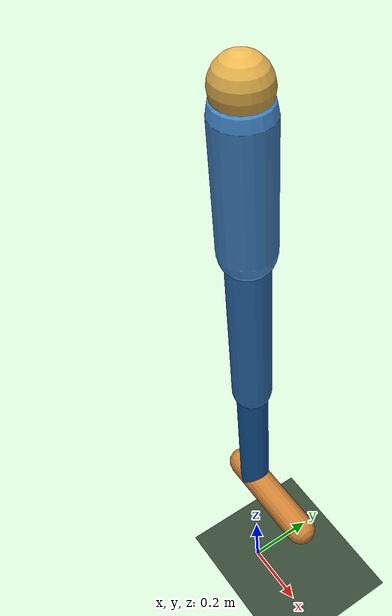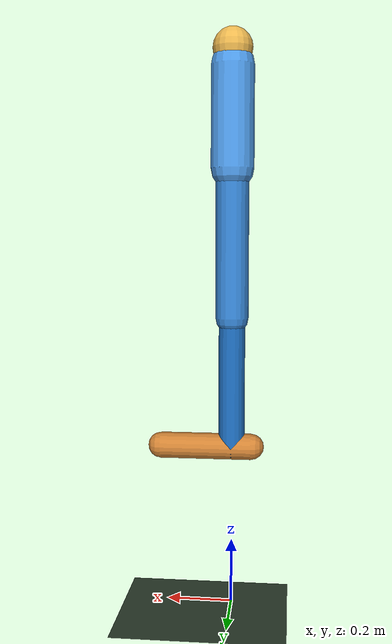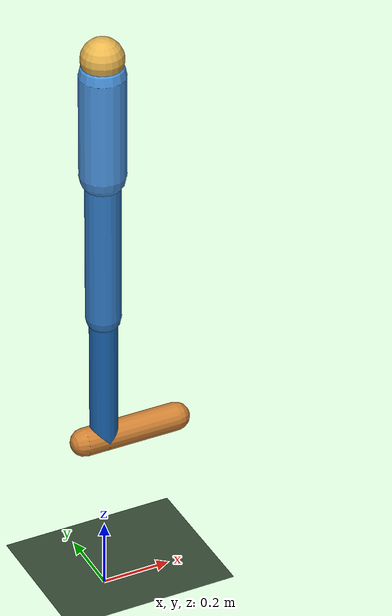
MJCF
<mujoco model="hopper">
  <compiler angle="radian" autolimits="true"/>
  <option timestep="0.004" gravity="0 0 -9.81" integrator="RK4"/>

  <visual>
    <headlight ambient="0.3 0.3 0.3" diffuse="0.8 0.8 0.8"/>
    <rgba haze="0.15 0.2 0.25 1"/>
    <quality shadowsize="2048"/>
  </visual>

  <default>
    <joint limited="true" damping="0.1" armature="0.01"/>
    <geom condim="3" friction="0.7 0.1 0.1" solimp="0.9 0.95 0.001" solref="0.02 1"/>
    <motor ctrllimited="true" ctrlrange="-1 1" gear="150"/>
  </default>

  <asset>
    <texture type="skybox" builtin="gradient" rgb1="0.4 0.6 0.8" rgb2="0 0 0" width="512" height="3072"/>
    <texture name="ground_tex" type="2d" builtin="checker" rgb1="0.25 0.35 0.25" rgb2="0.15 0.2 0.15"
             width="256" height="256"/>
    <material name="ground_mat" texture="ground_tex" texrepeat="8 8"/>
    <material name="torso_mat"  rgba="0.3 0.6 0.9 1"/>
    <material name="thigh_mat"  rgba="0.2 0.5 0.8 1"/>
    <material name="leg_mat"    rgba="0.1 0.4 0.7 1"/>
    <material name="foot_mat"   rgba="0.8 0.5 0.2 1"/>
  </asset>

  <worldbody>
    <light name="top"   pos="0 0 6"  dir="0 0 -1"    diffuse="0.6 0.6 0.6" specular="0.2 0.2 0.2" castshadow="true"/>
    <light name="side"  pos="3 0 4"  dir="-1 0 -0.5" diffuse="0.4 0.4 0.4"/>
    <geom name="floor"  type="plane" size="50 10 0.1" material="ground_mat" pos="0 0 0"/>

    <!-- Torso (root, free to move in x-z plane) -->
    <body name="torso" pos="0 0 1.25">
      <joint name="rootx"   type="slide" axis="1 0 0" limited="false" damping="0" armature="0"/>
      <joint name="rootz"   type="slide" axis="0 0 1" limited="false" damping="0" armature="0"/>
      <joint name="rooty"   type="hinge" axis="0 1 0" limited="false" damping="0" armature="0"/>

      <geom name="torso_geom" type="capsule" fromto="0 0 0.1  0 0 0.4" size="0.065" material="torso_mat" mass="3.6"/>
      <geom name="head_geom"  type="sphere"  pos="0 0 0.45"    size="0.06"  rgba="0.9 0.7 0.3 1"  mass="0.5"/>

      <!-- Thigh -->
      <body name="thigh" pos="0 0 0.1">
        <joint name="thigh_joint" type="hinge" axis="0 1 0" range="-0.523 1.396" damping="2.0"/>
        <geom name="thigh_geom" type="capsule" fromto="0 0 0  0 0 -0.45" size="0.05" material="thigh_mat" mass="1.0"/>

        <!-- Leg -->
        <body name="leg" pos="0 0 -0.45">
          <joint name="leg_joint" type="hinge" axis="0 1 0" range="-1.745 -0.0524" damping="2.0"/>
          <geom name="leg_geom" type="capsule" fromto="0 0 0  0 0 -0.4" size="0.04" material="leg_mat" mass="0.7"/>

          <!-- Foot -->
          <body name="foot" pos="0 0 -0.4">
            <joint name="foot_joint" type="hinge" axis="0 1 0" range="-0.785 0.785" damping="2.0"/>
            <geom name="foot_geom" type="capsule" fromto="-0.06 0 0  0.22 0 0" size="0.04"
                  material="foot_mat" mass="0.4" friction="2.0 0.1 0.1"/>
          </body>
        </body>
      </body>
    </body>
  </worldbody>

  <actuator>
    <motor name="thigh_act" joint="thigh_joint" gear="150"/>
    <motor name="leg_act"   joint="leg_joint"   gear="150"/>
    <motor name="foot_act"  joint="foot_joint"  gear="150"/>
  </actuator>

  <sensor>
    <jointpos name="thigh_pos"  joint="thigh_joint"/>
    <jointpos name="leg_pos"    joint="leg_joint"/>
    <jointpos name="foot_pos"   joint="foot_joint"/>
    <jointvel name="thigh_vel"  joint="thigh_joint"/>
    <jointvel name="leg_vel"    joint="leg_joint"/>
    <jointvel name="foot_vel"   joint="foot_joint"/>
  </sensor>
</mujoco>
